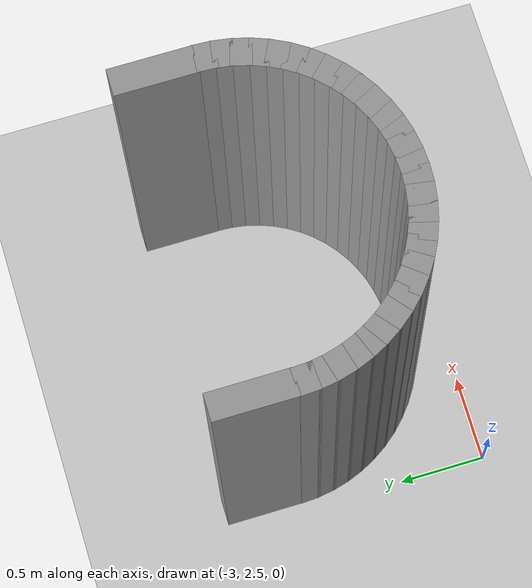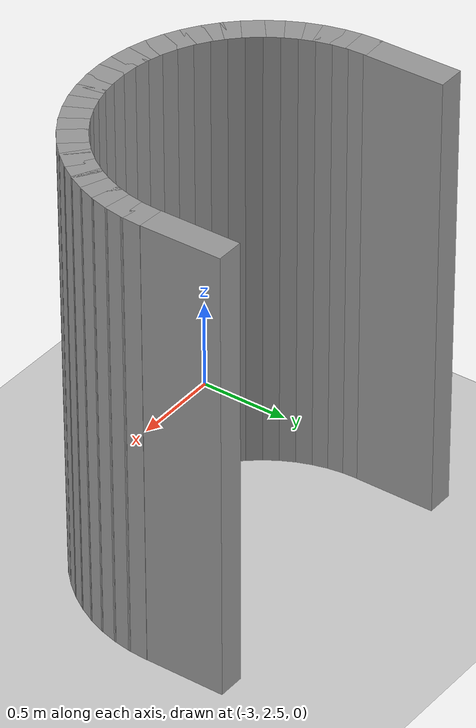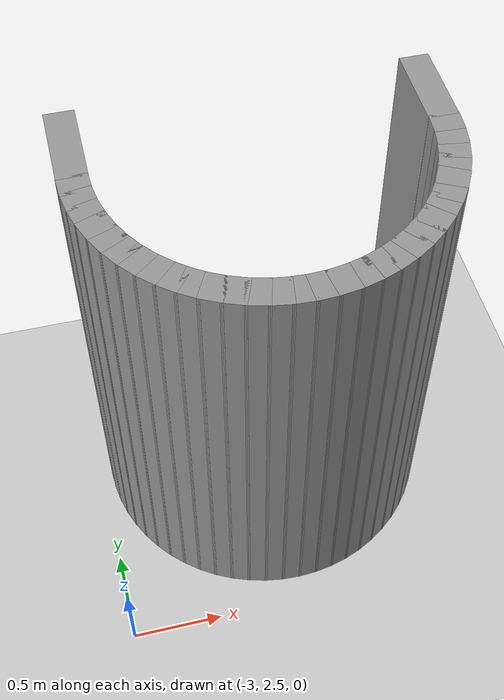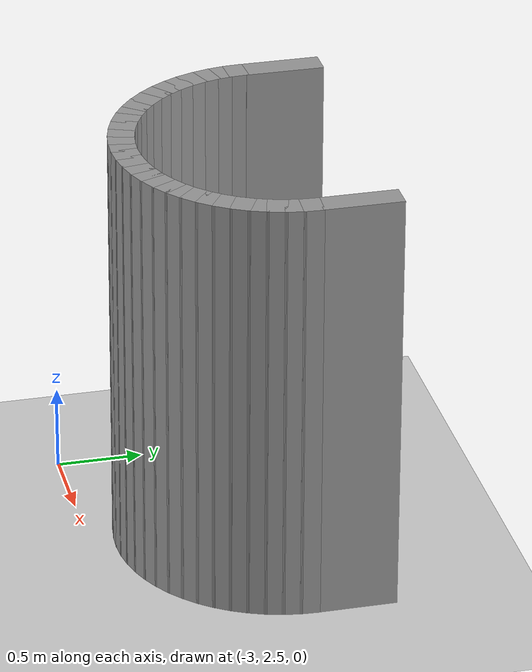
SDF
<sdf version="1.7">
 <world name="default">
  <model name="ground_plane">
   <static>1</static>
   <link name="link">
    <collision name="collision">
     <geometry><plane><normal>0 0 1</normal><size>100 100</size></plane></geometry>
     <surface>
      <contact><collide_bitmask>65535</collide_bitmask></contact>
      <friction><ode><mu>100</mu><mu2>50</mu2></ode></friction>
     </surface>
    </collision>
    <visual name="visual">
     <cast_shadows>0</cast_shadows>
     <geometry><plane><normal>0 0 1</normal><size>100 100</size></plane></geometry>
     <material>
      <script><uri>file://media/materials/scripts/gazebo.material</uri><name>Gazebo/Grey</name></script>
     </material>
    </visual>
   </link>
  </model>
  <model name="map_s_trap_goal_u">
   <link name="Goal_U_bottom_00">
    <collision name="Goal_U_bottom_00_Collision">
     <geometry><box><size>0.114485 0.15 2.5</size></box></geometry>
     <pose>0 0 1.25 0 -0 0</pose>
    </collision>
    <visual name="Goal_U_bottom_00_Visual">
     <pose>0 0 1.25 0 -0 0</pose>
     <geometry><box><size>0.114485 0.15 2.5</size></box></geometry>
     <material>
      <script><uri>file://media/materials/scripts/gazebo.material</uri><name>Gazebo/Grey</name></script>
      <ambient>1 1 1 1</ambient>
     </material>
    </visual>
    <pose>-2.873801 3.541706 0 0 -0 4.764749</pose>
   </link>
   <link name="Goal_U_bottom_01">
    <collision name="Goal_U_bottom_01_Collision">
     <geometry><box><size>0.114485 0.15 2.5</size></box></geometry>
     <pose>0 0 1.25 0 -0 0</pose>
    </collision>
    <visual name="Goal_U_bottom_01_Visual">
     <pose>0 0 1.25 0 -0 0</pose>
     <geometry><box><size>0.114485 0.15 2.5</size></box></geometry>
     <material>
      <script><uri>file://media/materials/scripts/gazebo.material</uri><name>Gazebo/Grey</name></script>
      <ambient>1 1 1 1</ambient>
     </material>
    </visual>
    <pose>-2.864227 3.450620 0 0 -0 4.869469</pose>
   </link>
   <link name="Goal_U_bottom_02">
    <collision name="Goal_U_bottom_02_Collision">
     <geometry><box><size>0.114485 0.15 2.5</size></box></geometry>
     <pose>0 0 1.25 0 -0 0</pose>
    </collision>
    <visual name="Goal_U_bottom_02_Visual">
     <pose>0 0 1.25 0 -0 0</pose>
     <geometry><box><size>0.114485 0.15 2.5</size></box></geometry>
     <material>
      <script><uri>file://media/materials/scripts/gazebo.material</uri><name>Gazebo/Grey</name></script>
      <ambient>1 1 1 1</ambient>
     </material>
    </visual>
    <pose>-2.845185 3.361033 0 0 -0 4.974188</pose>
   </link>
   <link name="Goal_U_bottom_03">
    <collision name="Goal_U_bottom_03_Collision">
     <geometry><box><size>0.114485 0.15 2.5</size></box></geometry>
     <pose>0 0 1.25 0 -0 0</pose>
    </collision>
    <visual name="Goal_U_bottom_03_Visual">
     <pose>0 0 1.25 0 -0 0</pose>
     <geometry><box><size>0.114485 0.15 2.5</size></box></geometry>
     <material>
      <script><uri>file://media/materials/scripts/gazebo.material</uri><name>Gazebo/Grey</name></script>
      <ambient>1 1 1 1</ambient>
     </material>
    </visual>
    <pose>-2.816883 3.273928 0 0 -0 5.078908</pose>
   </link>
   <link name="Goal_U_bottom_04">
    <collision name="Goal_U_bottom_04_Collision">
     <geometry><box><size>0.114485 0.15 2.5</size></box></geometry>
     <pose>0 0 1.25 0 -0 0</pose>
    </collision>
    <visual name="Goal_U_bottom_04_Visual">
     <pose>0 0 1.25 0 -0 0</pose>
     <geometry><box><size>0.114485 0.15 2.5</size></box></geometry>
     <material>
      <script><uri>file://media/materials/scripts/gazebo.material</uri><name>Gazebo/Grey</name></script>
      <ambient>1 1 1 1</ambient>
     </material>
    </visual>
    <pose>-2.779631 3.190258 0 0 -0 5.183628</pose>
   </link>
   <link name="Goal_U_bottom_05">
    <collision name="Goal_U_bottom_05_Collision">
     <geometry><box><size>0.114485 0.15 2.5</size></box></geometry>
     <pose>0 0 1.25 0 -0 0</pose>
    </collision>
    <visual name="Goal_U_bottom_05_Visual">
     <pose>0 0 1.25 0 -0 0</pose>
     <geometry><box><size>0.114485 0.15 2.5</size></box></geometry>
     <material>
      <script><uri>file://media/materials/scripts/gazebo.material</uri><name>Gazebo/Grey</name></script>
      <ambient>1 1 1 1</ambient>
     </material>
    </visual>
    <pose>-2.733837 3.110941 0 0 -0 5.288348</pose>
   </link>
   <link name="Goal_U_bottom_06">
    <collision name="Goal_U_bottom_06_Collision">
     <geometry><box><size>0.114485 0.15 2.5</size></box></geometry>
     <pose>0 0 1.25 0 -0 0</pose>
    </collision>
    <visual name="Goal_U_bottom_06_Visual">
     <pose>0 0 1.25 0 -0 0</pose>
     <geometry><box><size>0.114485 0.15 2.5</size></box></geometry>
     <material>
      <script><uri>file://media/materials/scripts/gazebo.material</uri><name>Gazebo/Grey</name></script>
      <ambient>1 1 1 1</ambient>
     </material>
    </visual>
    <pose>-2.680003 3.036845 0 0 -0 5.393067</pose>
   </link>
   <link name="Goal_U_bottom_07">
    <collision name="Goal_U_bottom_07_Collision">
     <geometry><box><size>0.114485 0.15 2.5</size></box></geometry>
     <pose>0 0 1.25 0 -0 0</pose>
    </collision>
    <visual name="Goal_U_bottom_07_Visual">
     <pose>0 0 1.25 0 -0 0</pose>
     <geometry><box><size>0.114485 0.15 2.5</size></box></geometry>
     <material>
      <script><uri>file://media/materials/scripts/gazebo.material</uri><name>Gazebo/Grey</name></script>
      <ambient>1 1 1 1</ambient>
     </material>
    </visual>
    <pose>-2.618718 2.968782 0 0 -0 5.497787</pose>
   </link>
   <link name="Goal_U_bottom_08">
    <collision name="Goal_U_bottom_08_Collision">
     <geometry><box><size>0.114485 0.15 2.5</size></box></geometry>
     <pose>0 0 1.25 0 -0 0</pose>
    </collision>
    <visual name="Goal_U_bottom_08_Visual">
     <pose>0 0 1.25 0 -0 0</pose>
     <geometry><box><size>0.114485 0.15 2.5</size></box></geometry>
     <material>
      <script><uri>file://media/materials/scripts/gazebo.material</uri><name>Gazebo/Grey</name></script>
      <ambient>1 1 1 1</ambient>
     </material>
    </visual>
    <pose>-2.550655 2.907497 0 0 -0 5.602507</pose>
   </link>
   <link name="Goal_U_bottom_09">
    <collision name="Goal_U_bottom_09_Collision">
     <geometry><box><size>0.114485 0.15 2.5</size></box></geometry>
     <pose>0 0 1.25 0 -0 0</pose>
    </collision>
    <visual name="Goal_U_bottom_09_Visual">
     <pose>0 0 1.25 0 -0 0</pose>
     <geometry><box><size>0.114485 0.15 2.5</size></box></geometry>
     <material>
      <script><uri>file://media/materials/scripts/gazebo.material</uri><name>Gazebo/Grey</name></script>
      <ambient>1 1 1 1</ambient>
     </material>
    </visual>
    <pose>-2.476559 2.853663 0 0 -0 5.707227</pose>
   </link>
   <link name="Goal_U_bottom_10">
    <collision name="Goal_U_bottom_10_Collision">
     <geometry><box><size>0.114485 0.15 2.5</size></box></geometry>
     <pose>0 0 1.25 0 -0 0</pose>
    </collision>
    <visual name="Goal_U_bottom_10_Visual">
     <pose>0 0 1.25 0 -0 0</pose>
     <geometry><box><size>0.114485 0.15 2.5</size></box></geometry>
     <material>
      <script><uri>file://media/materials/scripts/gazebo.material</uri><name>Gazebo/Grey</name></script>
      <ambient>1 1 1 1</ambient>
     </material>
    </visual>
    <pose>-2.397242 2.807869 0 0 -0 5.811946</pose>
   </link>
   <link name="Goal_U_bottom_11">
    <collision name="Goal_U_bottom_11_Collision">
     <geometry><box><size>0.114485 0.15 2.5</size></box></geometry>
     <pose>0 0 1.25 0 -0 0</pose>
    </collision>
    <visual name="Goal_U_bottom_11_Visual">
     <pose>0 0 1.25 0 -0 0</pose>
     <geometry><box><size>0.114485 0.15 2.5</size></box></geometry>
     <material>
      <script><uri>file://media/materials/scripts/gazebo.material</uri><name>Gazebo/Grey</name></script>
      <ambient>1 1 1 1</ambient>
     </material>
    </visual>
    <pose>-2.313572 2.770617 0 0 -0 5.916666</pose>
   </link>
   <link name="Goal_U_bottom_12">
    <collision name="Goal_U_bottom_12_Collision">
     <geometry><box><size>0.114485 0.15 2.5</size></box></geometry>
     <pose>0 0 1.25 0 -0 0</pose>
    </collision>
    <visual name="Goal_U_bottom_12_Visual">
     <pose>0 0 1.25 0 -0 0</pose>
     <geometry><box><size>0.114485 0.15 2.5</size></box></geometry>
     <material>
      <script><uri>file://media/materials/scripts/gazebo.material</uri><name>Gazebo/Grey</name></script>
      <ambient>1 1 1 1</ambient>
     </material>
    </visual>
    <pose>-2.226467 2.742315 0 0 -0 6.021386</pose>
   </link>
   <link name="Goal_U_bottom_13">
    <collision name="Goal_U_bottom_13_Collision">
     <geometry><box><size>0.114485 0.15 2.5</size></box></geometry>
     <pose>0 0 1.25 0 -0 0</pose>
    </collision>
    <visual name="Goal_U_bottom_13_Visual">
     <pose>0 0 1.25 0 -0 0</pose>
     <geometry><box><size>0.114485 0.15 2.5</size></box></geometry>
     <material>
      <script><uri>file://media/materials/scripts/gazebo.material</uri><name>Gazebo/Grey</name></script>
      <ambient>1 1 1 1</ambient>
     </material>
    </visual>
    <pose>-2.136880 2.723273 0 0 -0 6.126106</pose>
   </link>
   <link name="Goal_U_bottom_14">
    <collision name="Goal_U_bottom_14_Collision">
     <geometry><box><size>0.114485 0.15 2.5</size></box></geometry>
     <pose>0 0 1.25 0 -0 0</pose>
    </collision>
    <visual name="Goal_U_bottom_14_Visual">
     <pose>0 0 1.25 0 -0 0</pose>
     <geometry><box><size>0.114485 0.15 2.5</size></box></geometry>
     <material>
      <script><uri>file://media/materials/scripts/gazebo.material</uri><name>Gazebo/Grey</name></script>
      <ambient>1 1 1 1</ambient>
     </material>
    </visual>
    <pose>-2.045794 2.713699 0 0 -0 6.230825</pose>
   </link>
   <link name="Goal_U_bottom_15">
    <collision name="Goal_U_bottom_15_Collision">
     <geometry><box><size>0.114485 0.15 2.5</size></box></geometry>
     <pose>0 0 1.25 0 -0 0</pose>
    </collision>
    <visual name="Goal_U_bottom_15_Visual">
     <pose>0 0 1.25 0 -0 0</pose>
     <geometry><box><size>0.114485 0.15 2.5</size></box></geometry>
     <material>
      <script><uri>file://media/materials/scripts/gazebo.material</uri><name>Gazebo/Grey</name></script>
      <ambient>1 1 1 1</ambient>
     </material>
    </visual>
    <pose>-1.954206 2.713699 0 0 -0 6.335545</pose>
   </link>
   <link name="Goal_U_bottom_16">
    <collision name="Goal_U_bottom_16_Collision">
     <geometry><box><size>0.114485 0.15 2.5</size></box></geometry>
     <pose>0 0 1.25 0 -0 0</pose>
    </collision>
    <visual name="Goal_U_bottom_16_Visual">
     <pose>0 0 1.25 0 -0 0</pose>
     <geometry><box><size>0.114485 0.15 2.5</size></box></geometry>
     <material>
      <script><uri>file://media/materials/scripts/gazebo.material</uri><name>Gazebo/Grey</name></script>
      <ambient>1 1 1 1</ambient>
     </material>
    </visual>
    <pose>-1.863120 2.723273 0 0 -0 6.440265</pose>
   </link>
   <link name="Goal_U_bottom_17">
    <collision name="Goal_U_bottom_17_Collision">
     <geometry><box><size>0.114485 0.15 2.5</size></box></geometry>
     <pose>0 0 1.25 0 -0 0</pose>
    </collision>
    <visual name="Goal_U_bottom_17_Visual">
     <pose>0 0 1.25 0 -0 0</pose>
     <geometry><box><size>0.114485 0.15 2.5</size></box></geometry>
     <material>
      <script><uri>file://media/materials/scripts/gazebo.material</uri><name>Gazebo/Grey</name></script>
      <ambient>1 1 1 1</ambient>
     </material>
    </visual>
    <pose>-1.773533 2.742315 0 0 -0 6.544985</pose>
   </link>
   <link name="Goal_U_bottom_18">
    <collision name="Goal_U_bottom_18_Collision">
     <geometry><box><size>0.114485 0.15 2.5</size></box></geometry>
     <pose>0 0 1.25 0 -0 0</pose>
    </collision>
    <visual name="Goal_U_bottom_18_Visual">
     <pose>0 0 1.25 0 -0 0</pose>
     <geometry><box><size>0.114485 0.15 2.5</size></box></geometry>
     <material>
      <script><uri>file://media/materials/scripts/gazebo.material</uri><name>Gazebo/Grey</name></script>
      <ambient>1 1 1 1</ambient>
     </material>
    </visual>
    <pose>-1.686428 2.770617 0 0 -0 6.649704</pose>
   </link>
   <link name="Goal_U_bottom_19">
    <collision name="Goal_U_bottom_19_Collision">
     <geometry><box><size>0.114485 0.15 2.5</size></box></geometry>
     <pose>0 0 1.25 0 -0 0</pose>
    </collision>
    <visual name="Goal_U_bottom_19_Visual">
     <pose>0 0 1.25 0 -0 0</pose>
     <geometry><box><size>0.114485 0.15 2.5</size></box></geometry>
     <material>
      <script><uri>file://media/materials/scripts/gazebo.material</uri><name>Gazebo/Grey</name></script>
      <ambient>1 1 1 1</ambient>
     </material>
    </visual>
    <pose>-1.602758 2.807869 0 0 -0 6.754424</pose>
   </link>
   <link name="Goal_U_bottom_20">
    <collision name="Goal_U_bottom_20_Collision">
     <geometry><box><size>0.114485 0.15 2.5</size></box></geometry>
     <pose>0 0 1.25 0 -0 0</pose>
    </collision>
    <visual name="Goal_U_bottom_20_Visual">
     <pose>0 0 1.25 0 -0 0</pose>
     <geometry><box><size>0.114485 0.15 2.5</size></box></geometry>
     <material>
      <script><uri>file://media/materials/scripts/gazebo.material</uri><name>Gazebo/Grey</name></script>
      <ambient>1 1 1 1</ambient>
     </material>
    </visual>
    <pose>-1.523441 2.853663 0 0 -0 6.859144</pose>
   </link>
   <link name="Goal_U_bottom_21">
    <collision name="Goal_U_bottom_21_Collision">
     <geometry><box><size>0.114485 0.15 2.5</size></box></geometry>
     <pose>0 0 1.25 0 -0 0</pose>
    </collision>
    <visual name="Goal_U_bottom_21_Visual">
     <pose>0 0 1.25 0 -0 0</pose>
     <geometry><box><size>0.114485 0.15 2.5</size></box></geometry>
     <material>
      <script><uri>file://media/materials/scripts/gazebo.material</uri><name>Gazebo/Grey</name></script>
      <ambient>1 1 1 1</ambient>
     </material>
    </visual>
    <pose>-1.449345 2.907497 0 0 -0 6.963864</pose>
   </link>
   <link name="Goal_U_bottom_22">
    <collision name="Goal_U_bottom_22_Collision">
     <geometry><box><size>0.114485 0.15 2.5</size></box></geometry>
     <pose>0 0 1.25 0 -0 0</pose>
    </collision>
    <visual name="Goal_U_bottom_22_Visual">
     <pose>0 0 1.25 0 -0 0</pose>
     <geometry><box><size>0.114485 0.15 2.5</size></box></geometry>
     <material>
      <script><uri>file://media/materials/scripts/gazebo.material</uri><name>Gazebo/Grey</name></script>
      <ambient>1 1 1 1</ambient>
     </material>
    </visual>
    <pose>-1.381282 2.968782 0 0 -0 7.068583</pose>
   </link>
   <link name="Goal_U_bottom_23">
    <collision name="Goal_U_bottom_23_Collision">
     <geometry><box><size>0.114485 0.15 2.5</size></box></geometry>
     <pose>0 0 1.25 0 -0 0</pose>
    </collision>
    <visual name="Goal_U_bottom_23_Visual">
     <pose>0 0 1.25 0 -0 0</pose>
     <geometry><box><size>0.114485 0.15 2.5</size></box></geometry>
     <material>
      <script><uri>file://media/materials/scripts/gazebo.material</uri><name>Gazebo/Grey</name></script>
      <ambient>1 1 1 1</ambient>
     </material>
    </visual>
    <pose>-1.319997 3.036845 0 0 -0 7.173303</pose>
   </link>
   <link name="Goal_U_bottom_24">
    <collision name="Goal_U_bottom_24_Collision">
     <geometry><box><size>0.114485 0.15 2.5</size></box></geometry>
     <pose>0 0 1.25 0 -0 0</pose>
    </collision>
    <visual name="Goal_U_bottom_24_Visual">
     <pose>0 0 1.25 0 -0 0</pose>
     <geometry><box><size>0.114485 0.15 2.5</size></box></geometry>
     <material>
      <script><uri>file://media/materials/scripts/gazebo.material</uri><name>Gazebo/Grey</name></script>
      <ambient>1 1 1 1</ambient>
     </material>
    </visual>
    <pose>-1.266163 3.110941 0 0 -0 7.278023</pose>
   </link>
   <link name="Goal_U_bottom_25">
    <collision name="Goal_U_bottom_25_Collision">
     <geometry><box><size>0.114485 0.15 2.5</size></box></geometry>
     <pose>0 0 1.25 0 -0 0</pose>
    </collision>
    <visual name="Goal_U_bottom_25_Visual">
     <pose>0 0 1.25 0 -0 0</pose>
     <geometry><box><size>0.114485 0.15 2.5</size></box></geometry>
     <material>
      <script><uri>file://media/materials/scripts/gazebo.material</uri><name>Gazebo/Grey</name></script>
      <ambient>1 1 1 1</ambient>
     </material>
    </visual>
    <pose>-1.220369 3.190258 0 0 -0 7.382743</pose>
   </link>
   <link name="Goal_U_bottom_26">
    <collision name="Goal_U_bottom_26_Collision">
     <geometry><box><size>0.114485 0.15 2.5</size></box></geometry>
     <pose>0 0 1.25 0 -0 0</pose>
    </collision>
    <visual name="Goal_U_bottom_26_Visual">
     <pose>0 0 1.25 0 -0 0</pose>
     <geometry><box><size>0.114485 0.15 2.5</size></box></geometry>
     <material>
      <script><uri>file://media/materials/scripts/gazebo.material</uri><name>Gazebo/Grey</name></script>
      <ambient>1 1 1 1</ambient>
     </material>
    </visual>
    <pose>-1.183117 3.273928 0 0 -0 7.487462</pose>
   </link>
   <link name="Goal_U_bottom_27">
    <collision name="Goal_U_bottom_27_Collision">
     <geometry><box><size>0.114485 0.15 2.5</size></box></geometry>
     <pose>0 0 1.25 0 -0 0</pose>
    </collision>
    <visual name="Goal_U_bottom_27_Visual">
     <pose>0 0 1.25 0 -0 0</pose>
     <geometry><box><size>0.114485 0.15 2.5</size></box></geometry>
     <material>
      <script><uri>file://media/materials/scripts/gazebo.material</uri><name>Gazebo/Grey</name></script>
      <ambient>1 1 1 1</ambient>
     </material>
    </visual>
    <pose>-1.154815 3.361033 0 0 -0 7.592182</pose>
   </link>
   <link name="Goal_U_bottom_28">
    <collision name="Goal_U_bottom_28_Collision">
     <geometry><box><size>0.114485 0.15 2.5</size></box></geometry>
     <pose>0 0 1.25 0 -0 0</pose>
    </collision>
    <visual name="Goal_U_bottom_28_Visual">
     <pose>0 0 1.25 0 -0 0</pose>
     <geometry><box><size>0.114485 0.15 2.5</size></box></geometry>
     <material>
      <script><uri>file://media/materials/scripts/gazebo.material</uri><name>Gazebo/Grey</name></script>
      <ambient>1 1 1 1</ambient>
     </material>
    </visual>
    <pose>-1.135773 3.450620 0 0 -0 7.696902</pose>
   </link>
   <link name="Goal_U_bottom_29">
    <collision name="Goal_U_bottom_29_Collision">
     <geometry><box><size>0.114485 0.15 2.5</size></box></geometry>
     <pose>0 0 1.25 0 -0 0</pose>
    </collision>
    <visual name="Goal_U_bottom_29_Visual">
     <pose>0 0 1.25 0 -0 0</pose>
     <geometry><box><size>0.114485 0.15 2.5</size></box></geometry>
     <material>
      <script><uri>file://media/materials/scripts/gazebo.material</uri><name>Gazebo/Grey</name></script>
      <ambient>1 1 1 1</ambient>
     </material>
    </visual>
    <pose>-1.126199 3.541706 0 0 -0 7.801622</pose>
   </link>
   <link name="Goal_U_left">
    <collision name="Goal_U_left_Collision">
     <geometry><box><size>0.45 0.15 2.5</size></box></geometry>
     <pose>0 0 1.25 0 -0 0</pose>
    </collision>
    <visual name="Goal_U_left_Visual">
     <pose>0 0 1.25 0 -0 0</pose>
     <geometry><box><size>0.45 0.15 2.5</size></box></geometry>
     <material>
      <script><uri>file://media/materials/scripts/gazebo.material</uri><name>Gazebo/Grey</name></script>
      <ambient>1 1 1 1</ambient>
     </material>
    </visual>
    <pose>-2.875000 3.812500 0 0 -0 1.570796</pose>
   </link>
   <link name="Goal_U_right">
    <collision name="Goal_U_right_Collision">
     <geometry><box><size>0.45 0.15 2.5</size></box></geometry>
     <pose>0 0 1.25 0 -0 0</pose>
    </collision>
    <visual name="Goal_U_right_Visual">
     <pose>0 0 1.25 0 -0 0</pose>
     <geometry><box><size>0.45 0.15 2.5</size></box></geometry>
     <material>
      <script><uri>file://media/materials/scripts/gazebo.material</uri><name>Gazebo/Grey</name></script>
      <ambient>1 1 1 1</ambient>
     </material>
    </visual>
    <pose>-1.125000 3.812500 0 0 -0 1.570796</pose>
   </link>
   <static>1</static>
  </model>
 </world>
</sdf>
